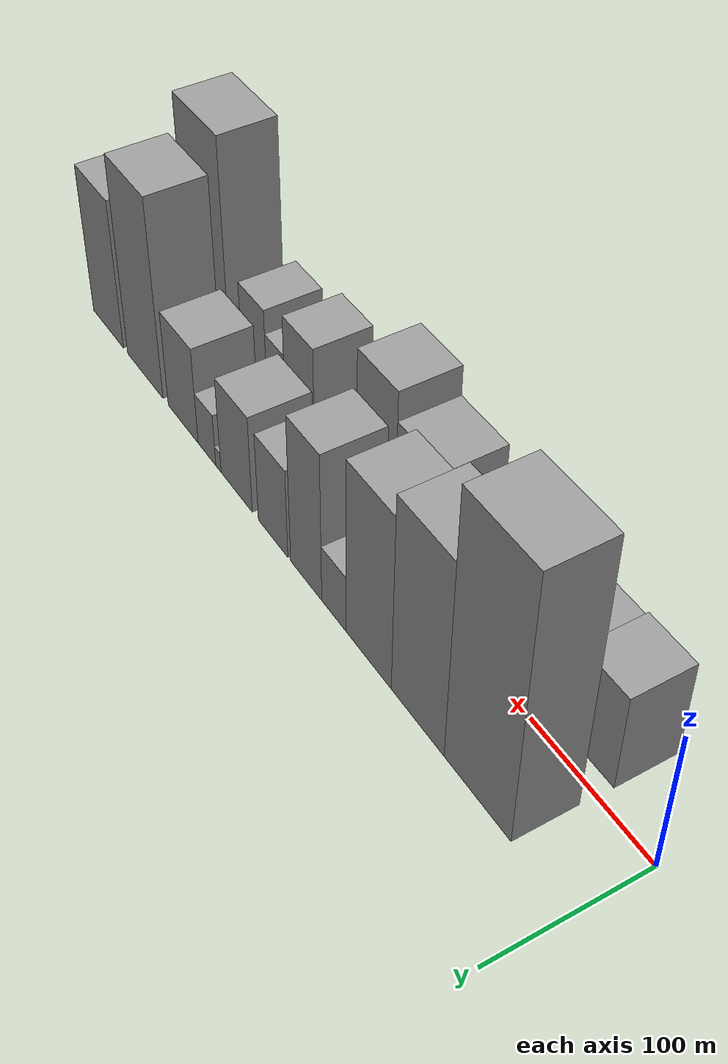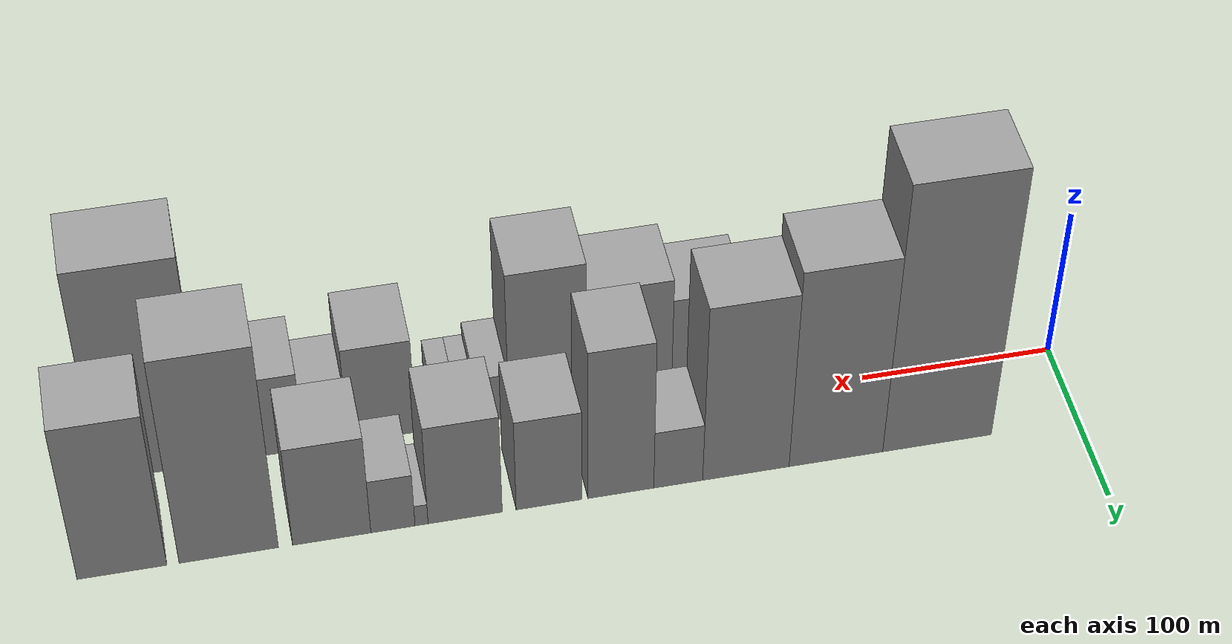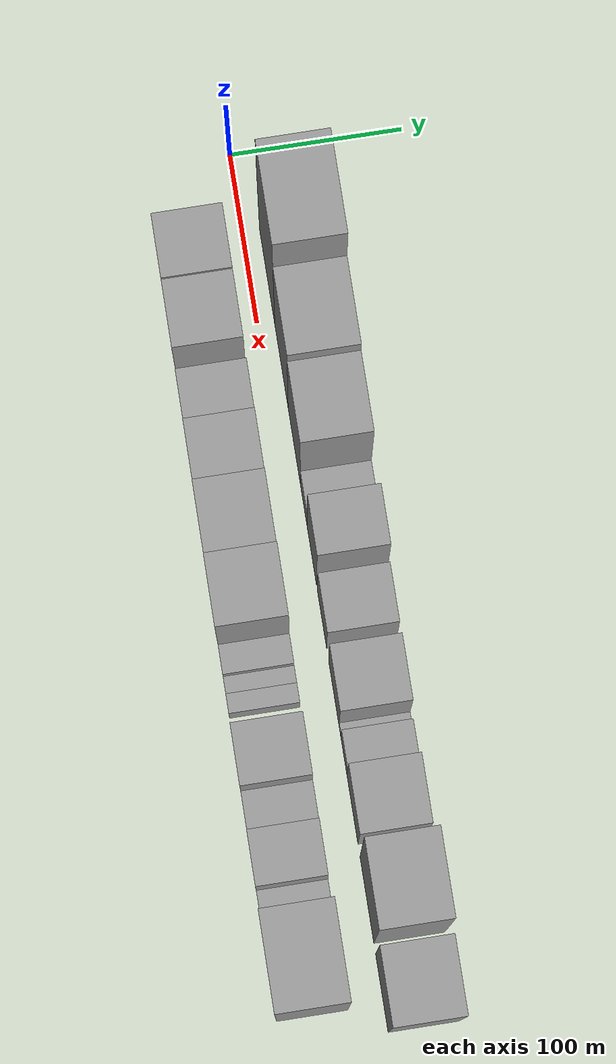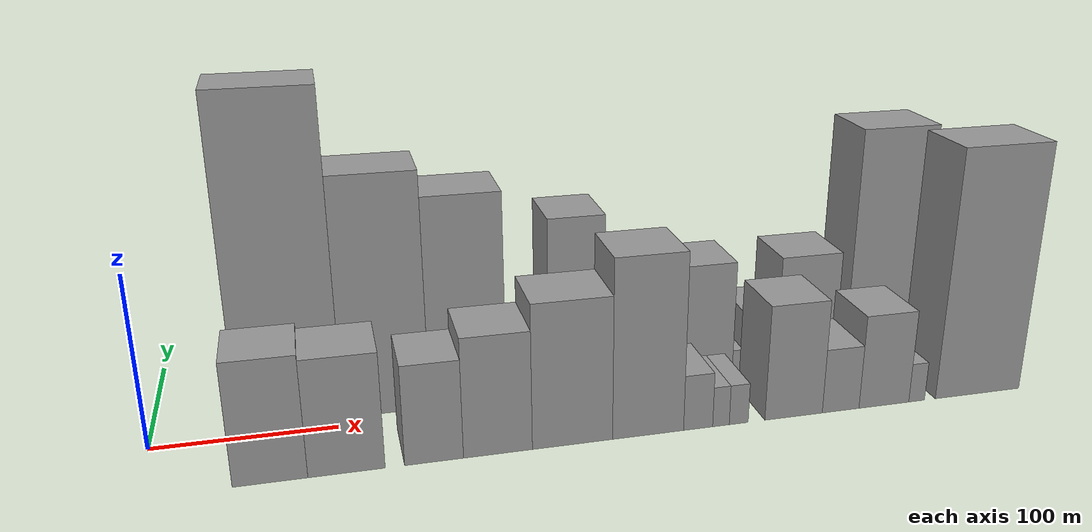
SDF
<sdf version="1.6">
 <world name="default">
  <scene>
   <sky><clouds><speed>12</speed></clouds></sky>
   <ambient>0.4 0.4 0.4 1</ambient>
   <background>0.7 0.7 0.7 1</background>
   <shadows>1</shadows>
  </scene>
  <gravity>0 0 -9.8066</gravity>
  <magnetic_field>6e-06 2.3e-05 -4.2e-05</magnetic_field>
  <physics default="0" name="default_physics" type="ode">
   <ode>
    <solver>
     <type>quick</type>
     <iters>10</iters>
     <sor>1.0</sor>
     <use_dynamic_moi_rescaling>0</use_dynamic_moi_rescaling>
    </solver>
    <constraints>
     <cfm>0</cfm>
     <erp>0.2</erp>
     <contact_max_correcting_vel>100</contact_max_correcting_vel>
     <contact_surface_layer>0.001</contact_surface_layer>
    </constraints>
   </ode>
   <max_step_size>0.004</max_step_size>
   <real_time_factor>1</real_time_factor>
   <real_time_update_rate>250</real_time_update_rate>
  </physics>
  <light name="sun" type="directional">
   <pose>0 0 10 0 0 0</pose>
   <diffuse>0.8 0.8 0.8 1</diffuse>
   <specular>0.2 0.2 0.2 1</specular>
   <attenuation>
    <range>1000</range>
    <constant>0.9</constant>
    <linear>0.01</linear>
    <quadratic>0.001</quadratic>
   </attenuation>
   <direction>-0.5 0.1 -0.9</direction>
  </light>
  <model name="building_1">
   <static>1</static>
   <pose>74.5581 30.0000 0 0.000000 0.000000 1.570796</pose>
   <link name="link">
    <pose>0 0 94.50 0 0 0</pose>
    <collision name="collision"><geometry><box><size>40.0000 57.1162 189.0000</size></box></geometry></collision>
    <visual name="visual">
     <cast_shadows>0</cast_shadows>
     <geometry><box><size>40.0000 57.1162 189.0000</size></box></geometry>
     <material>
      <script>
       <uri>model://grey_wall/materials/scripts</uri>
       <uri>model://grey_wall/materials/textures</uri>
       <name>vrc/grey_wall</name>
      </script>
     </material>
    </visual>
   </link>
  </model>
  <model name="building_2">
   <static>1</static>
   <pose>127.4692 30.0000 0 0.000000 0.000000 1.570796</pose>
   <link name="link">
    <pose>0 0 70.50 0 0 0</pose>
    <collision name="collision"><geometry><box><size>40.0000 48.7060 141.0000</size></box></geometry></collision>
    <visual name="visual">
     <cast_shadows>0</cast_shadows>
     <geometry><box><size>40.0000 48.7060 141.0000</size></box></geometry>
     <material>
      <script>
       <uri>model://grey_wall/materials/scripts</uri>
       <uri>model://grey_wall/materials/textures</uri>
       <name>vrc/grey_wall</name>
      </script>
     </material>
    </visual>
   </link>
  </model>
  <model name="building_3">
   <static>1</static>
   <pose>174.1359 30.0000 0 0.000000 0.000000 1.570796</pose>
   <link name="link">
    <pose>0 0 63.00 0 0 0</pose>
    <collision name="collision"><geometry><box><size>40.0000 44.6274 126.0000</size></box></geometry></collision>
    <visual name="visual">
     <cast_shadows>0</cast_shadows>
     <geometry><box><size>40.0000 44.6274 126.0000</size></box></geometry>
     <material>
      <script>
       <uri>model://grey_wall/materials/scripts</uri>
       <uri>model://grey_wall/materials/textures</uri>
       <name>vrc/grey_wall</name>
      </script>
     </material>
    </visual>
   </link>
  </model>
  <model name="building_4">
   <static>1</static>
   <pose>208.9829 30.0000 0 0.000000 0.000000 1.570796</pose>
   <link name="link">
    <pose>0 0 21.00 0 0 0</pose>
    <collision name="collision"><geometry><box><size>40.0000 25.0667 42.0000</size></box></geometry></collision>
    <visual name="visual">
     <cast_shadows>0</cast_shadows>
     <geometry><box><size>40.0000 25.0667 42.0000</size></box></geometry>
     <material>
      <script>
       <uri>model://grey_wall/materials/scripts</uri>
       <uri>model://grey_wall/materials/textures</uri>
       <name>vrc/grey_wall</name>
      </script>
     </material>
    </visual>
   </link>
  </model>
  <model name="building_5">
   <static>1</static>
   <pose>238.2963 30.0000 0 0.000000 0.000000 1.570796</pose>
   <link name="link">
    <pose>0 0 54.00 0 0 0</pose>
    <collision name="collision"><geometry><box><size>40.0000 33.5602 108.0000</size></box></geometry></collision>
    <visual name="visual">
     <cast_shadows>0</cast_shadows>
     <geometry><box><size>40.0000 33.5602 108.0000</size></box></geometry>
     <material>
      <script>
       <uri>model://grey_wall/materials/scripts</uri>
       <uri>model://grey_wall/materials/textures</uri>
       <name>vrc/grey_wall</name>
      </script>
     </material>
    </visual>
   </link>
  </model>
  <model name="building_6">
   <static>1</static>
   <pose>274.7517 30.0000 0 0.000000 0.000000 1.570796</pose>
   <link name="link">
    <pose>0 0 33.00 0 0 0</pose>
    <collision name="collision"><geometry><box><size>40.0000 33.3506 66.0000</size></box></geometry></collision>
    <visual name="visual">
     <cast_shadows>0</cast_shadows>
     <geometry><box><size>40.0000 33.3506 66.0000</size></box></geometry>
     <material>
      <script>
       <uri>model://grey_wall/materials/scripts</uri>
       <uri>model://grey_wall/materials/textures</uri>
       <name>vrc/grey_wall</name>
      </script>
     </material>
    </visual>
   </link>
  </model>
  <model name="building_7">
   <static>1</static>
   <pose>317.0574 30.0000 0 0.000000 0.000000 1.570796</pose>
   <link name="link">
    <pose>0 0 36.00 0 0 0</pose>
    <collision name="collision"><geometry><box><size>40.0000 37.2608 72.0000</size></box></geometry></collision>
    <visual name="visual">
     <cast_shadows>0</cast_shadows>
     <geometry><box><size>40.0000 37.2608 72.0000</size></box></geometry>
     <material>
      <script>
       <uri>model://grey_wall/materials/scripts</uri>
       <uri>model://grey_wall/materials/textures</uri>
       <name>vrc/grey_wall</name>
      </script>
     </material>
    </visual>
   </link>
  </model>
  <model name="building_8">
   <static>1</static>
   <pose>338.9426 30.0000 0 0.000000 0.000000 1.570796</pose>
   <link name="link">
    <pose>0 0 7.50 0 0 0</pose>
    <collision name="collision"><geometry><box><size>40.0000 6.5095 15.0000</size></box></geometry></collision>
    <visual name="visual">
     <cast_shadows>0</cast_shadows>
     <geometry><box><size>40.0000 6.5095 15.0000</size></box></geometry>
     <material>
      <script>
       <uri>model://grey_wall/materials/scripts</uri>
       <uri>model://grey_wall/materials/textures</uri>
       <name>vrc/grey_wall</name>
      </script>
     </material>
    </visual>
   </link>
  </model>
  <model name="building_9">
   <static>1</static>
   <pose>353.2198 30.0000 0 0.000000 0.000000 1.570796</pose>
   <link name="link">
    <pose>0 0 19.50 0 0 0</pose>
    <collision name="collision"><geometry><box><size>40.0000 22.0450 39.0000</size></box></geometry></collision>
    <visual name="visual">
     <cast_shadows>0</cast_shadows>
     <geometry><box><size>40.0000 22.0450 39.0000</size></box></geometry>
     <material>
      <script>
       <uri>model://grey_wall/materials/scripts</uri>
       <uri>model://grey_wall/materials/textures</uri>
       <name>vrc/grey_wall</name>
      </script>
     </material>
    </visual>
   </link>
  </model>
  <model name="building_10">
   <static>1</static>
   <pose>383.6568 30.0000 0 0.000000 0.000000 1.570796</pose>
   <link name="link">
    <pose>0 0 36.00 0 0 0</pose>
    <collision name="collision"><geometry><box><size>40.0000 38.8289 72.0000</size></box></geometry></collision>
    <visual name="visual">
     <cast_shadows>0</cast_shadows>
     <geometry><box><size>40.0000 38.8289 72.0000</size></box></geometry>
     <material>
      <script>
       <uri>model://grey_wall/materials/scripts</uri>
       <uri>model://grey_wall/materials/textures</uri>
       <name>vrc/grey_wall</name>
      </script>
     </material>
    </visual>
   </link>
  </model>
  <model name="building_11">
   <static>1</static>
   <pose>434.4700 30.0000 0 0.000000 0.000000 1.570796</pose>
   <link name="link">
    <pose>0 0 73.50 0 0 0</pose>
    <collision name="collision"><geometry><box><size>40.0000 48.7975 147.0000</size></box></geometry></collision>
    <visual name="visual">
     <cast_shadows>0</cast_shadows>
     <geometry><box><size>40.0000 48.7975 147.0000</size></box></geometry>
     <material>
      <script>
       <uri>model://grey_wall/materials/scripts</uri>
       <uri>model://grey_wall/materials/textures</uri>
       <name>vrc/grey_wall</name>
      </script>
     </material>
    </visual>
   </link>
  </model>
  <model name="building_12">
   <static>1</static>
   <pose>486.7101 30.0000 0 0.000000 0.000000 1.570796</pose>
   <link name="link">
    <pose>0 0 55.50 0 0 0</pose>
    <collision name="collision"><geometry><box><size>40.0000 43.6827 111.0000</size></box></geometry></collision>
    <visual name="visual">
     <cast_shadows>0</cast_shadows>
     <geometry><box><size>40.0000 43.6827 111.0000</size></box></geometry>
     <material>
      <script>
       <uri>model://grey_wall/materials/scripts</uri>
       <uri>model://grey_wall/materials/textures</uri>
       <name>vrc/grey_wall</name>
      </script>
     </material>
    </visual>
   </link>
  </model>
  <model name="building_13">
   <static>1</static>
   <pose>63.6018 -30.0000 0 0.000000 0.000000 1.570796</pose>
   <link name="link">
    <pose>0 0 34.50 0 0 0</pose>
    <collision name="collision"><geometry><box><size>40.0000 37.2036 69.0000</size></box></geometry></collision>
    <visual name="visual">
     <cast_shadows>0</cast_shadows>
     <geometry><box><size>40.0000 37.2036 69.0000</size></box></geometry>
     <material>
      <script>
       <uri>model://grey_wall/materials/scripts</uri>
       <uri>model://grey_wall/materials/textures</uri>
       <name>vrc/grey_wall</name>
      </script>
     </material>
    </visual>
   </link>
  </model>
  <model name="building_14">
   <static>1</static>
   <pose>101.7707 -30.0000 0 0.000000 0.000000 1.570796</pose>
   <link name="link">
    <pose>0 0 33.00 0 0 0</pose>
    <collision name="collision"><geometry><box><size>40.0000 39.1342 66.0000</size></box></geometry></collision>
    <visual name="visual">
     <cast_shadows>0</cast_shadows>
     <geometry><box><size>40.0000 39.1342 66.0000</size></box></geometry>
     <material>
      <script>
       <uri>model://grey_wall/materials/scripts</uri>
       <uri>model://grey_wall/materials/textures</uri>
       <name>vrc/grey_wall</name>
      </script>
     </material>
    </visual>
   </link>
  </model>
  <model name="building_15">
   <static>1</static>
   <pose>146.7385 -30.0000 0 0.000000 0.000000 1.570796</pose>
   <link name="link">
    <pose>0 0 28.50 0 0 0</pose>
    <collision name="collision"><geometry><box><size>40.0000 30.8015 57.0000</size></box></geometry></collision>
    <visual name="visual">
     <cast_shadows>0</cast_shadows>
     <geometry><box><size>40.0000 30.8015 57.0000</size></box></geometry>
     <material>
      <script>
       <uri>model://grey_wall/materials/scripts</uri>
       <uri>model://grey_wall/materials/textures</uri>
       <name>vrc/grey_wall</name>
      </script>
     </material>
    </visual>
   </link>
  </model>
  <model name="building_16">
   <static>1</static>
   <pose>180.6436 -30.0000 0 0.000000 0.000000 1.570796</pose>
   <link name="link">
    <pose>0 0 34.50 0 0 0</pose>
    <collision name="collision"><geometry><box><size>40.0000 37.0087 69.0000</size></box></geometry></collision>
    <visual name="visual">
     <cast_shadows>0</cast_shadows>
     <geometry><box><size>40.0000 37.0087 69.0000</size></box></geometry>
     <material>
      <script>
       <uri>model://grey_wall/materials/scripts</uri>
       <uri>model://grey_wall/materials/textures</uri>
       <name>vrc/grey_wall</name>
      </script>
     </material>
    </visual>
   </link>
  </model>
  <model name="building_17">
   <static>1</static>
   <pose>221.3284 -30.0000 0 0.000000 0.000000 1.570796</pose>
   <link name="link">
    <pose>0 0 42.00 0 0 0</pose>
    <collision name="collision"><geometry><box><size>40.0000 44.3609 84.0000</size></box></geometry></collision>
    <visual name="visual">
     <cast_shadows>0</cast_shadows>
     <geometry><box><size>40.0000 44.3609 84.0000</size></box></geometry>
     <material>
      <script>
       <uri>model://grey_wall/materials/scripts</uri>
       <uri>model://grey_wall/materials/textures</uri>
       <name>vrc/grey_wall</name>
      </script>
     </material>
    </visual>
   </link>
  </model>
  <model name="building_18">
   <static>1</static>
   <pose>263.7964 -30.0000 0 0.000000 0.000000 1.570796</pose>
   <link name="link">
    <pose>0 0 52.50 0 0 0</pose>
    <collision name="collision"><geometry><box><size>40.0000 40.5752 105.0000</size></box></geometry></collision>
    <visual name="visual">
     <cast_shadows>0</cast_shadows>
     <geometry><box><size>40.0000 40.5752 105.0000</size></box></geometry>
     <material>
      <script>
       <uri>model://grey_wall/materials/scripts</uri>
       <uri>model://grey_wall/materials/textures</uri>
       <name>vrc/grey_wall</name>
      </script>
     </material>
    </visual>
   </link>
  </model>
  <model name="building_19">
   <static>1</static>
   <pose>292.5426 -30.0000 0 0.000000 0.000000 1.570796</pose>
   <link name="link">
    <pose>0 0 16.50 0 0 0</pose>
    <collision name="collision"><geometry><box><size>40.0000 16.9172 33.0000</size></box></geometry></collision>
    <visual name="visual">
     <cast_shadows>0</cast_shadows>
     <geometry><box><size>40.0000 16.9172 33.0000</size></box></geometry>
     <material>
      <script>
       <uri>model://grey_wall/materials/scripts</uri>
       <uri>model://grey_wall/materials/textures</uri>
       <name>vrc/grey_wall</name>
      </script>
     </material>
    </visual>
   </link>
  </model>
  <model name="building_20">
   <static>1</static>
   <pose>305.8839 -30.0000 0 0.000000 0.000000 1.570796</pose>
   <link name="link">
    <pose>0 0 12.00 0 0 0</pose>
    <collision name="collision"><geometry><box><size>40.0000 9.7653 24.0000</size></box></geometry></collision>
    <visual name="visual">
     <cast_shadows>0</cast_shadows>
     <geometry><box><size>40.0000 9.7653 24.0000</size></box></geometry>
     <material>
      <script>
       <uri>model://grey_wall/materials/scripts</uri>
       <uri>model://grey_wall/materials/textures</uri>
       <name>vrc/grey_wall</name>
      </script>
     </material>
    </visual>
   </link>
  </model>
  <model name="building_21">
   <static>1</static>
   <pose>316.3816 -30.0000 0 0.000000 0.000000 1.570796</pose>
   <link name="link">
    <pose>0 0 12.00 0 0 0</pose>
    <collision name="collision"><geometry><box><size>40.0000 11.2301 24.0000</size></box></geometry></collision>
    <visual name="visual">
     <cast_shadows>0</cast_shadows>
     <geometry><box><size>40.0000 11.2301 24.0000</size></box></geometry>
     <material>
      <script>
       <uri>model://grey_wall/materials/scripts</uri>
       <uri>model://grey_wall/materials/textures</uri>
       <name>vrc/grey_wall</name>
      </script>
     </material>
    </visual>
   </link>
  </model>
  <model name="building_22">
   <static>1</static>
   <pose>349.4318 -30.0000 0 0.000000 0.000000 1.570796</pose>
   <link name="link">
    <pose>0 0 34.50 0 0 0</pose>
    <collision name="collision"><geometry><box><size>40.0000 34.8703 69.0000</size></box></geometry></collision>
    <visual name="visual">
     <cast_shadows>0</cast_shadows>
     <geometry><box><size>40.0000 34.8703 69.0000</size></box></geometry>
     <material>
      <script>
       <uri>model://grey_wall/materials/scripts</uri>
       <uri>model://grey_wall/materials/textures</uri>
       <name>vrc/grey_wall</name>
      </script>
     </material>
    </visual>
   </link>
  </model>
  <model name="building_23">
   <static>1</static>
   <pose>378.2280 -30.0000 0 0.000000 0.000000 1.570796</pose>
   <link name="link">
    <pose>0 0 19.50 0 0 0</pose>
    <collision name="collision"><geometry><box><size>40.0000 22.7221 39.0000</size></box></geometry></collision>
    <visual name="visual">
     <cast_shadows>0</cast_shadows>
     <geometry><box><size>40.0000 22.7221 39.0000</size></box></geometry>
     <material>
      <script>
       <uri>model://grey_wall/materials/scripts</uri>
       <uri>model://grey_wall/materials/textures</uri>
       <name>vrc/grey_wall</name>
      </script>
     </material>
    </visual>
   </link>
  </model>
  <model name="building_24">
   <static>1</static>
   <pose>405.3217 -30.0000 0 0.000000 0.000000 1.570796</pose>
   <link name="link">
    <pose>0 0 28.50 0 0 0</pose>
    <collision name="collision"><geometry><box><size>40.0000 31.4653 57.0000</size></box></geometry></collision>
    <visual name="visual">
     <cast_shadows>0</cast_shadows>
     <geometry><box><size>40.0000 31.4653 57.0000</size></box></geometry>
     <material>
      <script>
       <uri>model://grey_wall/materials/scripts</uri>
       <uri>model://grey_wall/materials/textures</uri>
       <name>vrc/grey_wall</name>
      </script>
     </material>
    </visual>
   </link>
  </model>
  <model name="building_25">
   <static>1</static>
   <pose>426.1001 -30.0000 0 0.000000 0.000000 1.570796</pose>
   <link name="link">
    <pose>0 0 12.00 0 0 0</pose>
    <collision name="collision"><geometry><box><size>40.0000 10.0915 24.0000</size></box></geometry></collision>
    <visual name="visual">
     <cast_shadows>0</cast_shadows>
     <geometry><box><size>40.0000 10.0915 24.0000</size></box></geometry>
     <material>
      <script>
       <uri>model://grey_wall/materials/scripts</uri>
       <uri>model://grey_wall/materials/textures</uri>
       <name>vrc/grey_wall</name>
      </script>
     </material>
    </visual>
   </link>
  </model>
  <model name="building_26">
   <static>1</static>
   <pose>465.5502 -30.0000 0 0.000000 0.000000 1.570796</pose>
   <link name="link">
    <pose>0 0 75.00 0 0 0</pose>
    <collision name="collision"><geometry><box><size>40.0000 54.8088 150.0000</size></box></geometry></collision>
    <visual name="visual">
     <cast_shadows>0</cast_shadows>
     <geometry><box><size>40.0000 54.8088 150.0000</size></box></geometry>
     <material>
      <script>
       <uri>model://grey_wall/materials/scripts</uri>
       <uri>model://grey_wall/materials/textures</uri>
       <name>vrc/grey_wall</name>
      </script>
     </material>
    </visual>
   </link>
  </model>
 </world>
</sdf>
